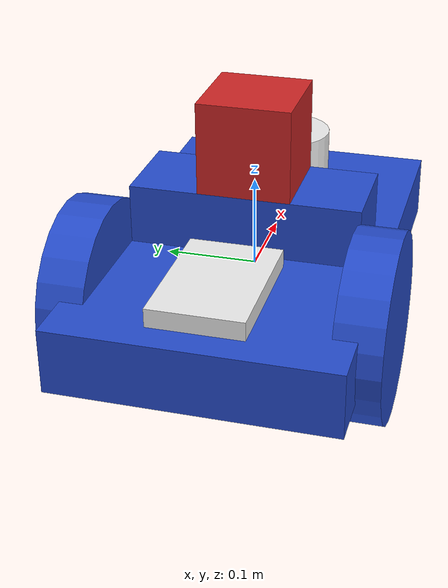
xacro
<?xml version="1.0" ?>
<robot name="i214" xmlns:xacro="http://www.ros.org/wiki/xacro">
  <xacro:include filename="$(find i214_description)/urdf/materials.xacro" />
  <xacro:include filename="$(find i214_description)/urdf/i214.gazebo" />
  <xacro:include filename="$(find i214_description)/urdf/macros.xacro" />

  <link name="link_chassis">
    <!-- pose and inertial -->
    <pose>0 0 0.1 0 0 0</pose>
    <inertial>
      <mass value="5"/>
      <origin rpy="0 0 0" xyz="0 0 0.1"/>
      <inertia ixx="0.0395416666667" ixy="0" ixz="0" iyy="0.106208333333" iyz="0" izz="0.106208333333"/>
    </inertial>
    <!-- body -->
    <collision name="collision_chassis">
      <geometry>
        <box size="0.5 0.3 0.07"/>
      </geometry>
    </collision>
    <visual>
      <origin rpy="0 0 0" xyz="0 0 0"/>
      <geometry>
        <box size="0.5 0.3 0.07"/>
      </geometry>
      <material name="blue"/>
    </visual>
    <!-- camera mount -->
    <collision name="collision_camera_mount">
      <geometry>
        <box size="0.1 0.25 0.1"/>
      </geometry>
    </collision>
    <visual>
      <origin rpy="0 0 0" xyz="0 0 0.05"/>
      <geometry>
        <box size="0.1 0.25 0.1"/>
      </geometry>
      <material name="blue"/>
    </visual>
    <!-- caster front -->
    <collision name="caster_front_collision">
      <origin rpy=" 0 0 0" xyz="0.35 0 -0.05"/>
      <geometry>
        <sphere radius="0.05"/>
      </geometry>
      <surface>
        <friction>
          <ode>
            <mu>0</mu>
            <mu2>0</mu2>
            <slip1>1.0</slip1>
            <slip2>1.0</slip2>
          </ode>
        </friction>
      </surface>
    </collision>
    <visual name="caster_front_visual">
      <origin rpy=" 0 0 0" xyz="0.2 0 -0.05"/>
      <geometry>
        <sphere radius="0.05"/>
      </geometry>
    </visual>
  </link>

  <joint name="camera_joint" type="fixed">
    <axis xyz="0 1 0" />
    <origin xyz="0 0 0.15" rpy="0 0 0"/>
    <parent link="link_chassis"/>
    <child link="camera_link"/>
  </joint>

  <!-- Camera -->
  <link name="camera_link">
    <collision>
      <origin xyz="0 0 0" rpy="0 0 0"/>
      <geometry>
        <box size="0.1 0.1 0.1"/>
      </geometry>
    </collision>

    <visual>
      <origin xyz="0 0 0" rpy="0 0 0"/>
      <geometry>
        <box size="0.1 0.1 0.1"/>
      </geometry>
      <material name="red"/>
    </visual>

    <inertial>
      <mass value="1e-5" />
      <origin xyz="0 0 0" rpy="0 0 0"/>
      <inertia ixx="1e-6" ixy="0" ixz="0" iyy="1e-6" iyz="0" izz="1e-6" />
    </inertial>
  </link>

  <link name="sensor_laser">
  <inertial>
      <origin xyz="0 0 0" rpy="0 0 0" />
      <mass value="0.1" />
      <xacro:cylinder_inertia m="0.1" r="0.05" h="0.1" />
  </inertial>

  <visual>
      <origin xyz="0 0 0" rpy="0 0 0" />
      <geometry>
      <cylinder radius="0.05" length="0.1"/>
      </geometry>
      <material name="white" />
  </visual>

  <collision>
      <origin xyz="0 0 0" rpy="0 0 0"/>
      <geometry>
      <cylinder radius="0.05" length="0.1"/>
      </geometry>
  </collision>
  </link>

  <joint name="joint_sensor_laser" type="fixed">
      <origin xyz="0.15 0 0.05" rpy="0 0 0"/>
      <parent link="link_chassis"/>
      <child link="sensor_laser"/>
  </joint>

  <joint name="imu_joint" type="fixed">
   <axis xyz="1 0 0"/>
   <origin xyz="-0.15 0 0.05"/>
   <parent link="link_chassis"/>
   <child link="imu_link"/>
 </joint>

 <link name="imu_link">
  <inertial>
    <mass value="0.001"/>
    <origin rpy="0 0 0" xyz="0 0 0"/>
    <inertia ixx="0.0001" ixy="0" ixz="0" iyy="0.000001" iyz="0" izz="0.0001"/>
  </inertial>
  <visual>
    <origin rpy="0 0 0" xyz="0 0 0"/>
    <geometry>
      <box size="0.15 0.1 0.02"/>
    </geometry>
    <material name="white" />
  </visual>
  <collision>
    <origin rpy="0 0 0" xyz="0 0 0"/>
    <geometry>
      <box size=".15 .1 .02"/>
    </geometry>
  </collision>
 </link>

 <link name="left_wheel">
   <!--origin xyz="0.1 0.13 0.1" rpy="0 1.5707 1.5707"/-->
   <collision name="collision">
     <origin xyz="0 0 0" rpy="0 1.5707 1.5707"/>
     <geometry>
       <cylinder radius="0.1" length="0.05"/>
     </geometry>
   </collision>
   <visual name="left_wheel_visual">
     <origin xyz="0 0 0" rpy="0 1.5707 1.5707"/>
     <geometry>
       <cylinder radius="0.1" length="0.05"/>
     </geometry>
   </visual>
   <inertial>
     <origin xyz="0 0 0" rpy="0 1.5707 1.5707"/>
     <mass value="5"/>
     <cylinder_inertia m="5" r="0.1" h="0.05"/>
     <inertia
       ixx="1.0" ixy="0.0" ixz="0.0"
       iyy="1.0" iyz="0.0"
       izz="1.0"/>
   </inertial>
 </link>

 <link name="right_wheel">
   <!--origin xyz="0.1 -0.13 0.1" rpy="0 1.5707 1.5707"/-->
   <collision name="collision">
     <origin xyz="0 0 0" rpy="0 1.5707 1.5707"/>
     <geometry>
       <cylinder radius="0.1" length="0.05"/>
     </geometry>
   </collision>
   <visual name="right_wheel_visual">
     <origin xyz="0 0 0" rpy="0 1.5707 1.5707"/>
     <geometry>
       <cylinder radius="0.1" length="0.05"/>
     </geometry>
   </visual>
   <inertial>
     <origin xyz="0 0 0" rpy="0 1.5707 1.5707"/>
     <mass value="5"/>
     <cylinder_inertia m="5" r="0.1" h="0.05"/>
     <inertia
       ixx="1.0" ixy="0.0" ixz="0.0"
       iyy="1.0" iyz="0.0"
       izz="1.0"/>
   </inertial>
 </link>

 <joint type="continuous" name="left_wheel_hinge">
   <origin xyz="-0.1 0.15 0" rpy="0 0 0"/>
   <child link="left_wheel"/>
   <parent link="link_chassis"/>
   <axis xyz="0 1 0" rpy="0 0 0"/>
   <limit effort="100" velocity="100"/>
   <joint_properties damping="0.0" friction="0.0"/>
 </joint>

 <joint type="continuous" name="right_wheel_hinge">
   <origin xyz="-0.1 -0.15 0" rpy="0 0 0"/>
   <child link="right_wheel"/>
   <parent link="link_chassis"/>
   <axis xyz="0 1 0" rpy="0 0 0"/>
   <limit effort="100" velocity="100"/>
   <joint_properties damping="0.0" friction="0.0"/>
 </joint>

</robot>

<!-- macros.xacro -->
<robot>
    <macro name="link_wheel" params="name">
        <link name="${name}">
            <inertial>
              <mass value="0.2"/>
              <origin rpy="0 1.5707 1.5707" xyz="0 0 0"/>
              <inertia ixx="0.001166666666" ixy="0" ixz="0" iyy="0.0011666666666" iyz="0" izz="0.0001666666"/>
            </inertial>
            <collision name="link_right_wheel_collision">
              <origin rpy="0 1.5707 1.5707" xyz="0 0 0"/>
              <geometry>
                <cylinder length="0.02" radius="0.1"/>
              </geometry>
            </collision>
            <visual name="${name}_visual">
              <origin rpy="0 1.5707 1.5707" xyz="0 0 0"/>
              <geometry>
                <cylinder length="0.02" radius="0.1"/>
              </geometry>
            </visual>
        </link>
    </macro>

    <macro name="joint_wheel" params="name child origin_xyz">
      <joint name="${name}" type="continuous">
        <origin rpy="0 0 0" xyz="${origin_xyz}"/>
        <child link="${child}"/>
        <parent link="link_chassis"/>
        <axis rpy="0 0 0" xyz="0 1 0"/>
        <limit effort="10000" velocity="1000"/>
        <joint_properties damping="0.0" friction="0.0"/>
      </joint>
    </macro>

    <macro name="cylinder_inertia" params="m r h">
        <inertia  ixx="${m*(3*r*r+h*h)/12}" ixy = "0" ixz = "0"
                  iyy="${m*(3*r*r+h*h)/12}" iyz = "0"
                  izz="${m*(r*r)/2}" />
    </macro>

</robot>
